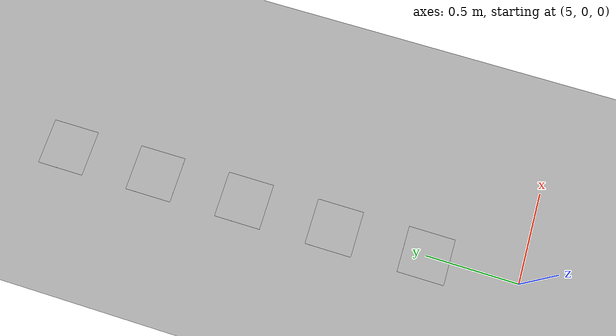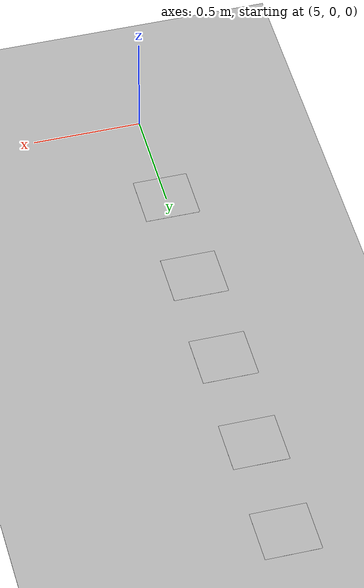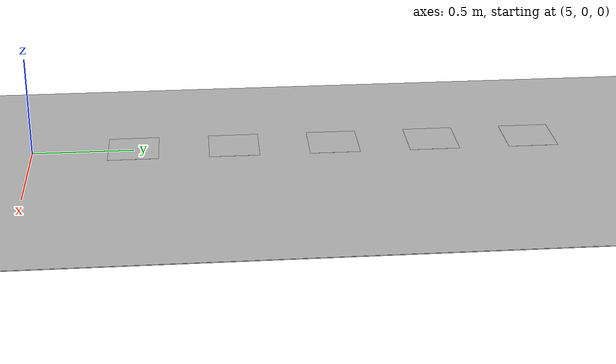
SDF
<?xml version="1.0"?>
<sdf version="1.4">
    <world name="default">
    <scene>
     <ambient>0.4 0.4 0.4 1.0</ambient>
     <shadows>0</shadows>
    </scene>
      <include>
        <uri>model://sun</uri>
      </include>
      <include>
        <uri>model://ground_plane</uri>
      </include>
      <include>
        <pose>5 0 0.001 0 0 0</pose>
        <uri>model://cessna_plane</uri>
      </include>
      <include>
        <pose>5 0.5 0.01 0 0 0</pose>
        <uri>model://cessna_image_1</uri>
      </include>
      <include>
        <pose>5 1 0.01 0 0 0</pose>
        <uri>model://cessna_image_2</uri>
      </include>
      <include>
        <pose>5 1.5 0.01 0 0 0</pose>
        <uri>model://cessna_image_3</uri>
      </include>
      <include>
        <pose>5 2 0.01 0 0 0</pose>
        <uri>model://cessna_image_4</uri>
      </include>
      <include>
        <pose>5 2.5 0.01 0 0 0</pose>
        <uri>model://cessna_image_5</uri>
      </include>
    </world>
  </sdf>

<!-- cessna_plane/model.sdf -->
<sdf version="1.4">
<model name="cessna_plane">
  <static>true</static>
    <link name="link">
      <collision name="collision">
        <geometry>
          <plane>
            <normal>0 0 1</normal>
            <size>50 50</size>
          </plane>
        </geometry>
        <surface>
          <friction>
            <ode>
              <mu>100</mu>
              <mu2>50</mu2>
            </ode>
          </friction>
        </surface>
      </collision>
      <visual name="visual">
        <cast_shadows>false</cast_shadows>
        <geometry>
          <plane>
            <normal>0 0 1</normal>
            <size>50 50 1</size>
          </plane>
        </geometry>
        <material>
          <script>
            <uri>model://cessna_plane/materials/scripts/cessna_plane.material</uri>
            <uri>model://cessna_plane/materials/textures</uri>
            <name>CessnaPlane/Image</name>
          </script>
        </material>
      </visual>
    </link>
  </model>
</sdf>

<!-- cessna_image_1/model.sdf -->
<sdf version="1.4">
<model name="cessna_image_1">
  <static>true</static>
    <link name="link">
      <collision name="collision">
        <geometry>
          <plane>
            <normal>0 0 1</normal>
            <size>0.25 0.25</size>
          </plane>
        </geometry>
        <surface>
          <friction>
            <ode>
              <mu>100</mu>
              <mu2>50</mu2>
            </ode>
          </friction>
        </surface>
      </collision>
      <visual name="visual">
        <cast_shadows>false</cast_shadows>
        <geometry>
          <plane>
            <normal>0 0 1</normal>
            <size>0.25 0.25</size>
          </plane>
        </geometry>
        <material>
          <script>
            <uri>model://cessna_image_1/materials/scripts/cessna_image_1.material</uri>
            <uri>model://cessna_image_1/materials/textures</uri>
            <name>CessnaImage1/Image</name>
          </script>
        </material>
      </visual>
    </link>
  </model>
</sdf>

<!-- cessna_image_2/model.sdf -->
<sdf version="1.4">
<model name="cessna_image_2">
  <static>true</static>
    <link name="link">
      <collision name="collision">
        <geometry>
          <plane>
            <normal>0 0 1</normal>
            <size>0.25 0.25</size>
          </plane>
        </geometry>
        <surface>
          <friction>
            <ode>
              <mu>100</mu>
              <mu2>50</mu2>
            </ode>
          </friction>
        </surface>
      </collision>
      <visual name="visual">
        <cast_shadows>false</cast_shadows>
        <geometry>
          <plane>
            <normal>0 0 1</normal>
            <size>0.25 0.25</size>
          </plane>
        </geometry>
        <material>
          <script>
            <uri>model://cessna_image_2/materials/scripts/cessna_image_2.material</uri>
            <uri>model://cessna_image_2/materials/textures</uri>
            <name>CessnaImage2/Image</name>
          </script>
        </material>
      </visual>
    </link>
  </model>
</sdf>

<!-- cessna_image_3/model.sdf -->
<sdf version="1.4">
<model name="cessna_image_3">
  <static>true</static>
    <link name="link">
      <collision name="collision">
        <geometry>
          <plane>
            <normal>0 0 1</normal>
            <size>0.25 0.25</size>
          </plane>
        </geometry>
        <surface>
          <friction>
            <ode>
              <mu>100</mu>
              <mu2>50</mu2>
            </ode>
          </friction>
        </surface>
      </collision>
      <visual name="visual">
        <cast_shadows>false</cast_shadows>
        <geometry>
          <plane>
            <normal>0 0 1</normal>
            <size>0.25 0.25</size>
          </plane>
        </geometry>
        <material>
          <script>
            <uri>model://cessna_image_3/materials/scripts/cessna_image_3.material</uri>
            <uri>model://cessna_image_3/materials/textures</uri>
            <name>CessnaImage3/Image</name>
          </script>
        </material>
      </visual>
    </link>
  </model>
</sdf>

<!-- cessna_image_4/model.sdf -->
<sdf version="1.4">
<model name="cessna_image_4">
  <static>true</static>
    <link name="link">
      <collision name="collision">
        <geometry>
          <plane>
            <normal>0 0 1</normal>
            <size>0.25 0.25</size>
          </plane>
        </geometry>
        <surface>
          <friction>
            <ode>
              <mu>100</mu>
              <mu2>50</mu2>
            </ode>
          </friction>
        </surface>
      </collision>
      <visual name="visual">
        <cast_shadows>false</cast_shadows>
        <geometry>
          <plane>
            <normal>0 0 1</normal>
            <size>0.25 0.25</size>
          </plane>
        </geometry>
        <material>
          <script>
            <uri>model://cessna_image_4/materials/scripts/cessna_image_4.material</uri>
            <uri>model://cessna_image_4/materials/textures</uri>
            <name>CessnaImage4/Image</name>
          </script>
        </material>
      </visual>
    </link>
  </model>
</sdf>

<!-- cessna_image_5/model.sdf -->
<sdf version="1.4">
<model name="cessna_image_5">
  <static>true</static>
    <link name="link">
      <collision name="collision">
        <geometry>
          <plane>
            <normal>0 0 1</normal>
            <size>0.25 0.25</size>
          </plane>
        </geometry>
        <surface>
          <friction>
            <ode>
              <mu>100</mu>
              <mu2>50</mu2>
            </ode>
          </friction>
        </surface>
      </collision>
      <visual name="visual">
        <cast_shadows>false</cast_shadows>
        <geometry>
          <plane>
            <normal>0 0 1</normal>
            <size>0.25 0.25</size>
          </plane>
        </geometry>
        <material>
          <script>
            <uri>model://cessna_image_5/materials/scripts/cessna_image_5.material</uri>
            <uri>model://cessna_image_5/materials/textures</uri>
            <name>CessnaImage5/Image</name>
          </script>
        </material>
      </visual>
    </link>
  </model>
</sdf>
